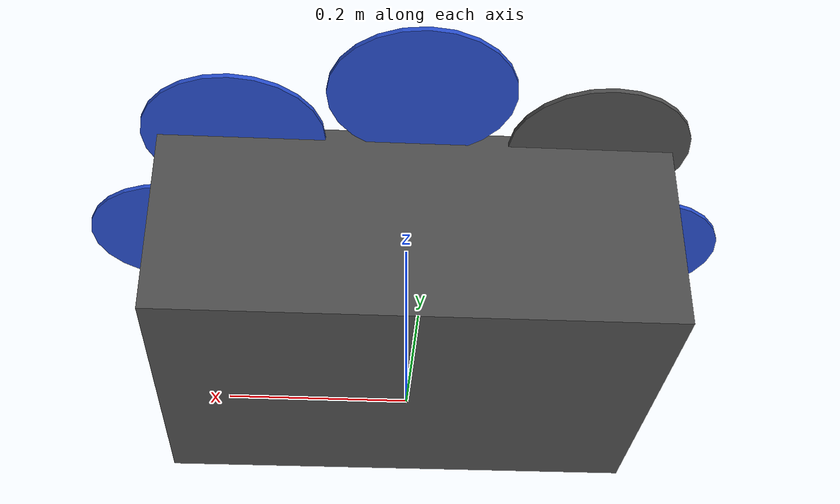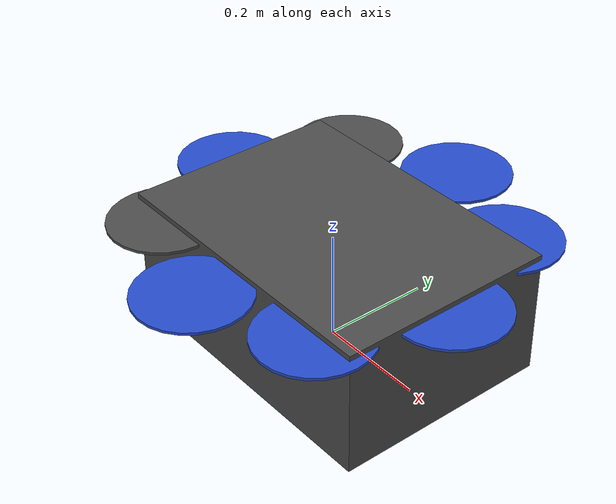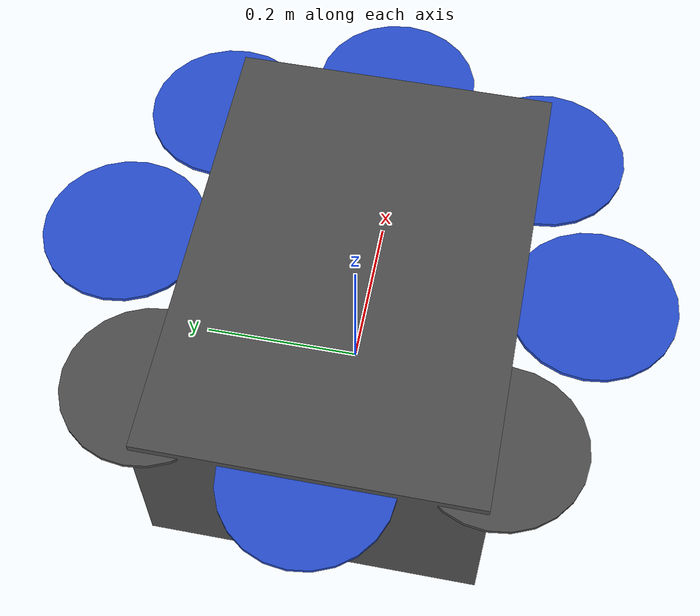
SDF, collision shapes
<?xml version='1.0'?>
<sdf version='1.5'>
  <model name='octocopter'>
    <pose>0 0 0.194923 0 0 0</pose>
    <link name='base_link'>
      <velocity_decay>
        <linear>0.0</linear>
        <angular>0.0</angular>
      </velocity_decay>
      <inertial>
        <pose>0 0 0 0 0 0</pose>
        <mass>1.5</mass>
        <inertia>
          <ixx>0.008</ixx>
          <ixy>0</ixy>
          <ixz>0</ixz>
          <iyy>0.015</iyy>
          <iyz>0</iyz>
          <izz>0.017</izz>
        </inertia>
      </inertial>
      <collision name='base_link_collision'>
        <pose>0 0 -0.08 0 0 0</pose>
        <geometry>
          <box>
            <size>0.564, 0.4 0.23</size>
          </box>
        </geometry>
        <surface>
          <contact>
            <ode>
              <max_vel>100.0</max_vel>
              <min_depth>0.001</min_depth>
            </ode>
          </contact>
          <friction>
            <ode>
              <mu>100000.0</mu>
              <mu2>100000.0</mu2>
            </ode>
          </friction>
        </surface>
      </collision>
      <visual name='base_link_visual'>
        <geometry>
          <mesh>
            <uri>model://octocopter_with_standoffs/meshes/iris.dae</uri>
          </mesh>
        </geometry>
        <material>
          <script>
            <name>Gazebo/DarkGrey</name>
          </script>
        </material>
      </visual>

      <visual name='front_left_leg_visual'>
        <pose>0.123 0.22 -0.11 0 0 0</pose>
        <geometry>
          <cylinder>
            <radius>0.005</radius>
            <length>0.17</length>
          </cylinder>
        </geometry>
        <material>
          <script>
            <name>Gazebo/FlatBlack</name>
            <uri>file://media/materials/scripts/gazebo.material</uri>
          </script>
        </material>
      </visual>
      <visual name='front_right_leg_visual'>
        <pose>0.123 -0.22 -0.11 0 0 0</pose>
        <geometry>
          <cylinder>
            <radius>0.005</radius>
            <length>0.17</length>
          </cylinder>
        </geometry>
        <material>
          <script>
            <name>Gazebo/FlatBlack</name>
            <uri>file://media/materials/scripts/gazebo.material</uri>
          </script>
        </material>
      </visual>
      <visual name='rear_left_leg_visual'>
        <pose>-0.140 0.21 -0.11 0 0 0</pose>
        <geometry>
          <cylinder>
            <radius>0.005</radius>
            <length>0.17</length>
          </cylinder>
        </geometry>
        <material>
          <script>
            <name>Gazebo/FlatBlack</name>
            <uri>file://media/materials/scripts/gazebo.material</uri>
          </script>
        </material>
      </visual>
      <visual name='rear_right_leg_visual'>
        <pose>-0.140 -0.21 -0.11 0 0 0</pose>
        <geometry>
          <cylinder>
            <radius>0.005</radius>
            <length>0.17</length>
          </cylinder>
        </geometry>
        <material>
          <script>
            <name>Gazebo/FlatBlack</name>
            <uri>file://media/materials/scripts/gazebo.material</uri>
          </script>
        </material>
      </visual>
    </link>
    <link name='octocopter/ground_truth/odometry_sensorgt_link'>
      <pose>0 0 0 0 -0 0</pose>
      <inertial>
        <pose>0 0 0 0 -0 0</pose>
        <mass>0.15</mass>
        <inertia>
          <ixx>0.0001</ixx>
          <ixy>0</ixy>
          <ixz>0</ixz>
          <iyy>0.0002</iyy>
          <iyz>0</iyz>
          <izz>0.0002</izz>
        </inertia>
      </inertial>
    </link>
    <joint name='octocopter/ground_truth/odometry_sensorgt_joint' type='revolute'>
      <child>octocopter/ground_truth/odometry_sensorgt_link</child>
      <parent>base_link</parent>
      <axis>
        <xyz>0 0 1</xyz>
        <limit>
          <lower>0</lower>
          <upper>0</upper>
          <effort>0</effort>
          <velocity>0</velocity>
        </limit>
        <dynamics>
          <damping>1.0</damping>
        </dynamics>
        <use_parent_model_frame>1</use_parent_model_frame>
      </axis>
      <physics>
        <ode>
          <implicit_spring_damper>1</implicit_spring_damper>
        </ode>
      </physics>
    </joint>
    <link name='octocopter/imu_link'>
      <inertial>
        <pose>0 0 0 0 0 0</pose>
        <mass>0.15</mass>
        <inertia>
          <ixx>0.00001</ixx>
          <ixy>0</ixy>
          <ixz>0</ixz>
          <iyy>0.00002</iyy>
          <iyz>0</iyz>
          <izz>0.00002</izz>
        </inertia>
      </inertial>
      <sensor name="imu_sensor" type="imu">
        <pose>0 0 0 3.141593 0 0</pose>
        <always_on>1</always_on>
        <update_rate>1000.0</update_rate>
      </sensor>
    </link>
    <joint name='octocopter/imu_joint' type='revolute'>
      <child>octocopter/imu_link</child>
      <parent>base_link</parent>
      <axis>
        <xyz>0 0 1</xyz>
        <limit>
          <lower>0</lower>
          <upper>0</upper>
          <effort>0</effort>
          <velocity>0</velocity>
        </limit>
        <dynamics>
          <damping>1.0</damping>
        </dynamics>
        <use_parent_model_frame>1</use_parent_model_frame>
      </axis>
      <physics>
        <ode>
          <implicit_spring_damper>1</implicit_spring_damper>
        </ode>
      </physics>
    </joint>
    <!-- ===================== rotor_0 ====================== -->
    <link name='rotor_0'>
      <pose>0.2 -0.2 0.023 0 -0 0</pose>
      <inertial>
        <pose>0 0 0 0 -0 0</pose>
        <mass>0.025</mass>
        <inertia>
          <ixx>9.75e-06</ixx>
          <ixy>0</ixy>
          <ixz>0</ixz>
          <iyy>0.000166704</iyy>
          <iyz>0</iyz>
          <izz>0.000167604</izz>
        </inertia>
      </inertial>
      <collision name='rotor_0_collision'>
        <pose>0 0 0 0 -0 0</pose>
        <geometry>
          <cylinder>
            <length>0.005</length>
            <radius>0.1</radius>
          </cylinder>
        </geometry>
        <surface>
          <contact>
            <ode/>
          </contact>
          <friction>
            <ode/>
          </friction>
        </surface>
      </collision>
      <visual name='rotor_0_visual'>
        <pose>0 0 0 0 -0 0</pose>
        <geometry>
          <mesh>
            <scale>1 1 1</scale>
            <uri>model://octocopter_with_standoffs/meshes/iris_prop_ccw.dae</uri>
          </mesh>
        </geometry>
        <material>
          <script>
            <name>Gazebo/Blue</name>
            <uri>__default__</uri>
          </script>
        </material>
      </visual>
      <gravity>1</gravity>
      <velocity_decay/>
      <self_collide>0</self_collide>
    </link>
    <joint name='rotor_0_joint' type='revolute'>
      <child>rotor_0</child>
      <parent>base_link</parent>
      <axis>
        <xyz>0 0 1</xyz>
        <limit>
          <lower>-1e+16</lower>
          <upper>1e+16</upper>
        </limit>
        <dynamics>
          <damping>0.004</damping>
        </dynamics>
        <use_parent_model_frame>1</use_parent_model_frame>
      </axis>
      <physics>
        <ode>
          <implicit_spring_damper>1</implicit_spring_damper>
        </ode>
      </physics>
    </joint>
    <!-- ===================== rotor_1 ====================== -->
    <link name='rotor_1'>
      <pose>-0.2 0.2 0.023 0 -0 0</pose>
      <inertial>
        <pose>0 0 0 0 -0 0</pose>
        <mass>0.025</mass>
        <inertia>
          <ixx>9.75e-06</ixx>
          <ixy>0</ixy>
          <ixz>0</ixz>
          <iyy>0.000166704</iyy>
          <iyz>0</iyz>
          <izz>0.000167604</izz>
        </inertia>
      </inertial>
      <collision name='rotor_1_collision'>
        <pose>0 0 0 0 -0 0</pose>
        <geometry>
          <cylinder>
            <length>0.005</length>
            <radius>0.1</radius>
          </cylinder>
        </geometry>
        <surface>
          <contact>
            <ode/>
          </contact>
          <friction>
            <ode/>
          </friction>
        </surface>
      </collision>
      <visual name='rotor_1_visual'>
        <pose>0 0 0 0 -0 0</pose>
        <geometry>
          <mesh>
            <scale>1 1 1</scale>
            <uri>model://octocopter_with_standoffs/meshes/iris_prop_ccw.dae</uri>
          </mesh>
        </geometry>
        <material>
          <script>
            <name>Gazebo/DarkGrey</name>
            <uri>__default__</uri>
          </script>
        </material>
      </visual>
      <gravity>1</gravity>
      <velocity_decay/>
      <self_collide>0</self_collide>
    </link>
    <joint name='rotor_1_joint' type='revolute'>
      <child>rotor_1</child>
      <parent>base_link</parent>
      <axis>
        <xyz>0 0 1</xyz>
        <limit>
          <lower>-1e+16</lower>
          <upper>1e+16</upper>
        </limit>
        <dynamics>
          <damping>0.004</damping>
        </dynamics>
        <use_parent_model_frame>1</use_parent_model_frame>
      </axis>
      <physics>
        <ode>
          <implicit_spring_damper>1</implicit_spring_damper>
        </ode>
      </physics>
    </joint>
    <!-- ===================== rotor_2 ====================== -->
    <link name='rotor_2'>
      <pose>0.2 0.2 0.023 0 -0 0</pose>
      <inertial>
        <pose>0 0 0 0 -0 0</pose>
        <mass>0.025</mass>
        <inertia>
          <ixx>9.75e-06</ixx>
          <ixy>0</ixy>
          <ixz>0</ixz>
          <iyy>0.000166704</iyy>
          <iyz>0</iyz>
          <izz>0.000167604</izz>
        </inertia>
      </inertial>
      <collision name='rotor_2_collision'>
        <pose>0 0 0 0 -0 0</pose>
        <geometry>
          <cylinder>
            <length>0.005</length>
            <radius>0.1</radius>
          </cylinder>
        </geometry>
        <surface>
          <contact>
            <ode/>
          </contact>
          <friction>
            <ode/>
          </friction>
        </surface>
      </collision>
      <visual name='rotor_2_visual'>
        <pose>0 0 0 0 -0 0</pose>
        <geometry>
          <mesh>
            <scale>1 1 1</scale>
            <uri>model://octocopter_with_standoffs/meshes/iris_prop_cw.dae</uri>
          </mesh>
        </geometry>
        <material>
          <script>
            <name>Gazebo/Blue</name>
            <uri>__default__</uri>
          </script>
        </material>
      </visual>
      <gravity>1</gravity>
      <velocity_decay/>
      <self_collide>0</self_collide>
    </link>
    <joint name='rotor_2_joint' type='revolute'>
      <child>rotor_2</child>
      <parent>base_link</parent>
      <axis>
        <xyz>0 0 1</xyz>
        <limit>
          <lower>-1e+16</lower>
          <upper>1e+16</upper>
        </limit>
        <dynamics>
          <damping>0.004</damping>
        </dynamics>
        <use_parent_model_frame>1</use_parent_model_frame>
      </axis>
      <physics>
        <ode>
          <implicit_spring_damper>1</implicit_spring_damper>
        </ode>
      </physics>
    </joint>
    <!-- ===================== rotor_3 ====================== -->
    <link name='rotor_3'>
      <pose>-0.2 -0.2 0.023 0 -0 0</pose>
      <inertial>
        <pose>0 0 0 0 -0 0</pose>
        <mass>0.025</mass>
        <inertia>
          <ixx>9.75e-06</ixx>
          <ixy>0</ixy>
          <ixz>0</ixz>
          <iyy>0.000166704</iyy>
          <iyz>0</iyz>
          <izz>0.000167604</izz>
        </inertia>
      </inertial>
      <collision name='rotor_3_collision'>
        <pose>0 0 0 0 -0 0</pose>
        <geometry>
          <cylinder>
            <length>0.005</length>
            <radius>0.1</radius>
          </cylinder>
        </geometry>
        <surface>
          <contact>
            <ode/>
          </contact>
          <friction>
            <ode/>
          </friction>
        </surface>
      </collision>
      <visual name='rotor_3_visual'>
        <pose>0 0 0 0 -0 0</pose>
        <geometry>
          <mesh>
            <scale>1 1 1</scale>
            <uri>model://octocopter_with_standoffs/meshes/iris_prop_cw.dae</uri>
          </mesh>
        </geometry>
        <material>
          <script>
            <name>Gazebo/DarkGrey</name>
            <uri>__default__</uri>
          </script>
        </material>
      </visual>
      <gravity>1</gravity>
      <velocity_decay/>
      <self_collide>0</self_collide>
    </link>
    <joint name='rotor_3_joint' type='revolute'>
      <child>rotor_3</child>
      <parent>base_link</parent>
      <axis>
        <xyz>0 0 1</xyz>
        <limit>
          <lower>-1e+16</lower>
          <upper>1e+16</upper>
        </limit>
        <dynamics>
          <damping>0.004</damping>
        </dynamics>
        <use_parent_model_frame>1</use_parent_model_frame>
      </axis>
      <physics>
        <ode>
          <implicit_spring_damper>1</implicit_spring_damper>
        </ode>
      </physics>
    </joint>

    <!-- ===================== rotor_4 ====================== -->
    <link name='rotor_4'>
      <pose>0.282 0 0.023 0 -0 0</pose>
      <inertial>
        <pose>0 0 0 0 -0 0</pose>
        <mass>0.025</mass>
        <inertia>
          <ixx>9.75e-06</ixx>
          <ixy>0</ixy>
          <ixz>0</ixz>
          <iyy>0.000166704</iyy>
          <iyz>0</iyz>
          <izz>0.000167604</izz>
        </inertia>
      </inertial>
      <collision name='rotor_4_collision'>
        <pose>0 0 0 0 -0 0</pose>
        <geometry>
          <cylinder>
            <length>0.005</length>
            <radius>0.1</radius>
          </cylinder>
        </geometry>
        <surface>
          <contact>
            <ode/>
          </contact>
          <friction>
            <ode/>
          </friction>
        </surface>
      </collision>
      <visual name='rotor_4_visual'>
        <pose>0 0 0 0 -0 0</pose>
        <geometry>
          <mesh>
            <scale>1 1 1</scale>
            <uri>model://octocopter_with_standoffs/meshes/iris_prop_ccw.dae</uri>
          </mesh>
        </geometry>
        <material>
          <script>
            <name>Gazebo/Blue</name>
            <uri>__default__</uri>
          </script>
        </material>
      </visual>
      <gravity>1</gravity>
      <velocity_decay/>
      <self_collide>0</self_collide>
    </link>
    <joint name='rotor_4_joint' type='revolute'>
      <child>rotor_4</child>
      <parent>base_link</parent>
      <axis>
        <xyz>0 0 1</xyz>
        <limit>
          <lower>-1e+16</lower>
          <upper>1e+16</upper>
        </limit>
        <dynamics>
          <damping>0.004</damping>
        </dynamics>
        <use_parent_model_frame>1</use_parent_model_frame>
      </axis>
      <physics>
        <ode>
          <implicit_spring_damper>1</implicit_spring_damper>
        </ode>
      </physics>
    </joint>

    <!-- ===================== rotor_5 ====================== -->
    <link name='rotor_5'>
      <pose>0 0.282 0.023 0 -0 0</pose>
      <inertial>
        <pose>0 0 0 0 -0 0</pose>
        <mass>0.025</mass>
        <inertia>
          <ixx>9.75e-06</ixx>
          <ixy>0</ixy>
          <ixz>0</ixz>
          <iyy>0.000166704</iyy>
          <iyz>0</iyz>
          <izz>0.000167604</izz>
        </inertia>
      </inertial>
      <collision name='rotor_5_collision'>
        <pose>0 0 0 0 -0 0</pose>
        <geometry>
          <cylinder>
            <length>0.005</length>
            <radius>0.1</radius>
          </cylinder>
        </geometry>
        <surface>
          <contact>
            <ode/>
          </contact>
          <friction>
            <ode/>
          </friction>
        </surface>
      </collision>
      <visual name='rotor_5_visual'>
        <pose>0 0 0 0 -0 0</pose>
        <geometry>
          <mesh>
            <scale>1 1 1</scale>
            <uri>model://octocopter_with_standoffs/meshes/iris_prop_ccw.dae</uri>
          </mesh>
        </geometry>
        <material>
          <script>
            <name>Gazebo/Blue</name>
            <uri>__default__</uri>
          </script>
        </material>
      </visual>
      <gravity>1</gravity>
      <velocity_decay/>
      <self_collide>0</self_collide>
    </link>
    <joint name='rotor_5_joint' type='revolute'>
      <child>rotor_5</child>
      <parent>base_link</parent>
      <axis>
        <xyz>0 0 1</xyz>
        <limit>
          <lower>-1e+16</lower>
          <upper>1e+16</upper>
        </limit>
        <dynamics>
          <damping>0.004</damping>
        </dynamics>
        <use_parent_model_frame>1</use_parent_model_frame>
      </axis>
      <physics>
        <ode>
          <implicit_spring_damper>1</implicit_spring_damper>
        </ode>
      </physics>
    </joint>

    <!-- ===================== rotor_6 ====================== -->
    <link name='rotor_6'>
      <pose>-0.282 0 0.023 0 -0 0</pose>
      <inertial>
        <pose>0 0 0 0 -0 0</pose>
        <mass>0.025</mass>
        <inertia>
          <ixx>9.75e-06</ixx>
          <ixy>0</ixy>
          <ixz>0</ixz>
          <iyy>0.000166704</iyy>
          <iyz>0</iyz>
          <izz>0.000167604</izz>
        </inertia>
      </inertial>
      <collision name='rotor_6_collision'>
        <pose>0 0 0 0 -0 0</pose>
        <geometry>
          <cylinder>
            <length>0.005</length>
            <radius>0.1</radius>
          </cylinder>
        </geometry>
        <surface>
          <contact>
            <ode/>
          </contact>
          <friction>
            <ode/>
          </friction>
        </surface>
      </collision>
      <visual name='rotor_6_visual'>
        <pose>0 0 0 0 -0 0</pose>
        <geometry>
          <mesh>
            <scale>1 1 1</scale>
            <uri>model://octocopter_with_standoffs/meshes/iris_prop_ccw.dae</uri>
          </mesh>
        </geometry>
        <material>
          <script>
            <name>Gazebo/Blue</name>
            <uri>__default__</uri>
          </script>
        </material>
      </visual>
      <gravity>1</gravity>
      <velocity_decay/>
      <self_collide>0</self_collide>
    </link>
    <joint name='rotor_6_joint' type='revolute'>
      <child>rotor_6</child>
      <parent>base_link</parent>
      <axis>
        <xyz>0 0 1</xyz>
        <limit>
          <lower>-1e+16</lower>
          <upper>1e+16</upper>
        </limit>
        <dynamics>
          <damping>0.004</damping>
        </dynamics>
        <use_parent_model_frame>1</use_parent_model_frame>
      </axis>
      <physics>
        <ode>
          <implicit_spring_damper>1</implicit_spring_damper>
        </ode>
      </physics>
    </joint>

    <!-- ===================== rotor_7 ====================== -->
    <link name='rotor_7'>
      <pose>0 -0.282 0.023 0 -0 0</pose>
      <inertial>
        <pose>0 0 0 0 -0 0</pose>
        <mass>0.025</mass>
        <inertia>
          <ixx>9.75e-06</ixx>
          <ixy>0</ixy>
          <ixz>0</ixz>
          <iyy>0.000166704</iyy>
          <iyz>0</iyz>
          <izz>0.000167604</izz>
        </inertia>
      </inertial>
      <collision name='rotor_7_collision'>
        <pose>0 0 0 0 -0 0</pose>
        <geometry>
          <cylinder>
            <length>0.005</length>
            <radius>0.1</radius>
          </cylinder>
        </geometry>
        <surface>
          <contact>
            <ode/>
          </contact>
          <friction>
            <ode/>
          </friction>
        </surface>
      </collision>
      <visual name='rotor_7_visual'>
        <pose>0 0 0 0 -0 0</pose>
        <geometry>
          <mesh>
            <scale>1 1 1</scale>
            <uri>model://octocopter_with_standoffs/meshes/iris_prop_ccw.dae</uri>
          </mesh>
        </geometry>
        <material>
          <script>
            <name>Gazebo/Blue</name>
            <uri>__default__</uri>
          </script>
        </material>
      </visual>
      <gravity>1</gravity>
      <velocity_decay/>
      <self_collide>0</self_collide>
    </link>
    <joint name='rotor_7_joint' type='revolute'>
      <child>rotor_7</child>
      <parent>base_link</parent>
      <axis>
        <xyz>0 0 1</xyz>
        <limit>
          <lower>-1e+16</lower>
          <upper>1e+16</upper>
        </limit>
        <dynamics>
          <damping>0.004</damping>
        </dynamics>
        <use_parent_model_frame>1</use_parent_model_frame>
      </axis>
      <physics>
        <ode>
          <implicit_spring_damper>1</implicit_spring_damper>
        </ode>
      </physics>
    </joint>

    <static>0</static>
  </model>
</sdf>
